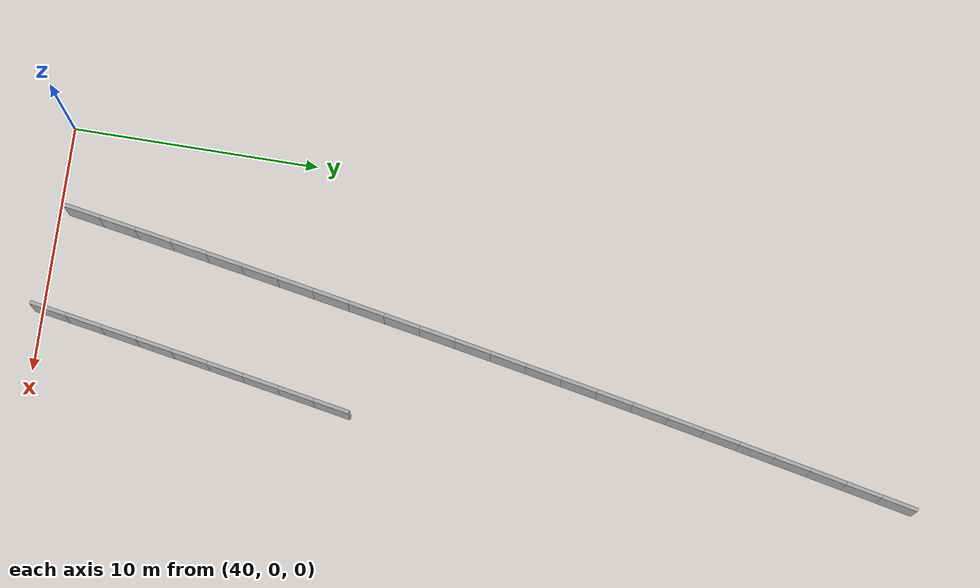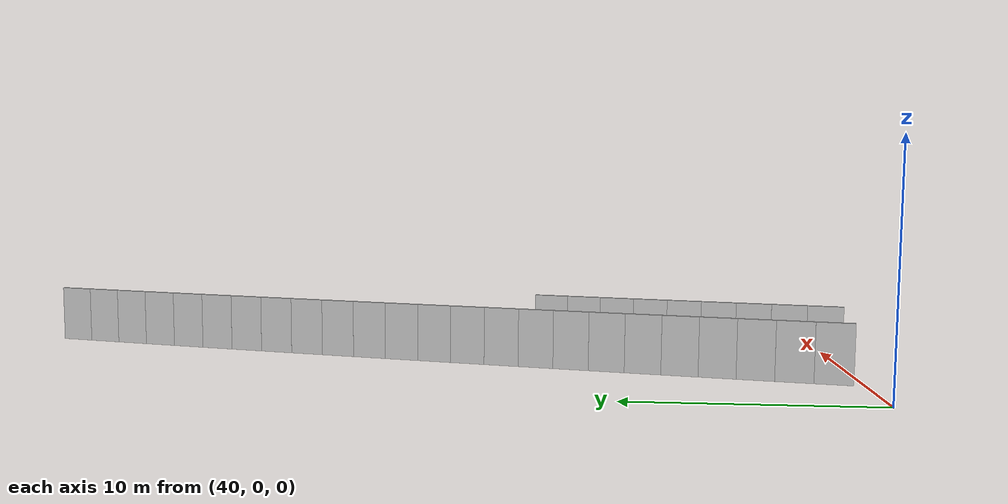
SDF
<?xml version="1.0" ?>
<sdf version="1.6">
  <model name="sps_0229">
    <pose frame="">0 0 0 0 -0 0</pose>
    <static>1</static>
    <self_collide>0</self_collide>
    <allow_auto_disable>0</allow_auto_disable>
    <link name="Wall5094">
      <kinematic>0</kinematic>
      <gravity>1</gravity>
      <self_collide>0</self_collide>
      <collision name="collision">
        <geometry>
          <box>
            <size>1.49668 0.15 2.5</size>
          </box>
        </geometry>
        <pose frame="">0 0 0 0 -0 0</pose>
      </collision>
      <visual name="visual">
        <geometry>
          <box>
            <size>1.49668 0.15 2.5</size>
          </box>
        </geometry>
        <pose frame="">0 0 0 0 -0 0</pose>
        <cast_shadows>1</cast_shadows>
        <transparency>0.0</transparency>
      </visual>
      <pose frame="">49.7481 12.2487 1.25 0 0 -1.75112</pose>
    </link>
    <link name="Wall5095">
      <kinematic>0</kinematic>
      <gravity>1</gravity>
      <self_collide>0</self_collide>
      <collision name="collision">
        <geometry>
          <box>
            <size>1.4965 0.15 2.5</size>
          </box>
        </geometry>
        <pose frame="">0 0 0 0 -0 0</pose>
      </collision>
      <visual name="visual">
        <geometry>
          <box>
            <size>1.4965 0.15 2.5</size>
          </box>
        </geometry>
        <pose frame="">0 0 0 0 -0 0</pose>
        <cast_shadows>1</cast_shadows>
        <transparency>0.0</transparency>
      </visual>
      <pose frame="">49.4806 10.7762 1.25 0 0 -1.74978</pose>
    </link>
    <link name="Wall5096">
      <kinematic>0</kinematic>
      <gravity>1</gravity>
      <self_collide>0</self_collide>
      <collision name="collision">
        <geometry>
          <box>
            <size>1.4964 0.15 2.5</size>
          </box>
        </geometry>
        <pose frame="">0 0 0 0 -0 0</pose>
      </collision>
      <visual name="visual">
        <geometry>
          <box>
            <size>1.4964 0.15 2.5</size>
          </box>
        </geometry>
        <pose frame="">0 0 0 0 -0 0</pose>
        <cast_shadows>1</cast_shadows>
        <transparency>0.0</transparency>
      </visual>
      <pose frame="">49.2155 9.30339 1.25 0 0 -1.74801</pose>
    </link>
    <link name="Wall5097">
      <kinematic>0</kinematic>
      <gravity>1</gravity>
      <self_collide>0</self_collide>
      <collision name="collision">
        <geometry>
          <box>
            <size>1.49667 0.15 2.5</size>
          </box>
        </geometry>
        <pose frame="">0 0 0 0 -0 0</pose>
      </collision>
      <visual name="visual">
        <geometry>
          <box>
            <size>1.49667 0.15 2.5</size>
          </box>
        </geometry>
        <pose frame="">0 0 0 0 -0 0</pose>
        <cast_shadows>1</cast_shadows>
        <transparency>0.0</transparency>
      </visual>
      <pose frame="">48.9528 7.83009 1.25 0 0 -1.74648</pose>
    </link>
    <link name="Wall5098">
      <kinematic>0</kinematic>
      <gravity>1</gravity>
      <self_collide>0</self_collide>
      <collision name="collision">
        <geometry>
          <box>
            <size>1.49641 0.15 2.5</size>
          </box>
        </geometry>
        <pose frame="">0 0 0 0 -0 0</pose>
      </collision>
      <visual name="visual">
        <geometry>
          <box>
            <size>1.49641 0.15 2.5</size>
          </box>
        </geometry>
        <pose frame="">0 0 0 0 -0 0</pose>
        <cast_shadows>1</cast_shadows>
        <transparency>0.0</transparency>
      </visual>
      <pose frame="">48.6923 6.3564 1.25 0 0 -1.74502</pose>
    </link>
    <link name="Wall5099">
      <kinematic>0</kinematic>
      <gravity>1</gravity>
      <self_collide>0</self_collide>
      <collision name="collision">
        <geometry>
          <box>
            <size>1.49662 0.15 2.5</size>
          </box>
        </geometry>
        <pose frame="">0 0 0 0 -0 0</pose>
      </collision>
      <visual name="visual">
        <geometry>
          <box>
            <size>1.49662 0.15 2.5</size>
          </box>
        </geometry>
        <pose frame="">0 0 0 0 -0 0</pose>
        <cast_shadows>1</cast_shadows>
        <transparency>0.0</transparency>
      </visual>
      <pose frame="">48.4343 4.88231 1.25 0 0 -1.74322</pose>
    </link>
    <link name="Wall5100">
      <kinematic>0</kinematic>
      <gravity>1</gravity>
      <self_collide>0</self_collide>
      <collision name="collision">
        <geometry>
          <box>
            <size>1.49643 0.15 2.5</size>
          </box>
        </geometry>
        <pose frame="">0 0 0 0 -0 0</pose>
      </collision>
      <visual name="visual">
        <geometry>
          <box>
            <size>1.49643 0.15 2.5</size>
          </box>
        </geometry>
        <pose frame="">0 0 0 0 -0 0</pose>
        <cast_shadows>1</cast_shadows>
        <transparency>0.0</transparency>
      </visual>
      <pose frame="">48.1786 3.40779 1.25 0 0 -1.74179</pose>
    </link>
    <link name="Wall5101">
      <kinematic>0</kinematic>
      <gravity>1</gravity>
      <self_collide>0</self_collide>
      <collision name="collision">
        <geometry>
          <box>
            <size>1.49662 0.15 2.5</size>
          </box>
        </geometry>
        <pose frame="">0 0 0 0 -0 0</pose>
      </collision>
      <visual name="visual">
        <geometry>
          <box>
            <size>1.49662 0.15 2.5</size>
          </box>
        </geometry>
        <pose frame="">0 0 0 0 -0 0</pose>
        <cast_shadows>1</cast_shadows>
        <transparency>0.0</transparency>
      </visual>
      <pose frame="">47.9251 1.93288 1.25 0 0 -1.74012</pose>
    </link>
    <link name="Wall5102">
      <kinematic>0</kinematic>
      <gravity>1</gravity>
      <self_collide>0</self_collide>
      <collision name="collision">
        <geometry>
          <box>
            <size>1.49643 0.15 2.5</size>
          </box>
        </geometry>
        <pose frame="">0 0 0 0 -0 0</pose>
      </collision>
      <visual name="visual">
        <geometry>
          <box>
            <size>1.49643 0.15 2.5</size>
          </box>
        </geometry>
        <pose frame="">0 0 0 0 -0 0</pose>
        <cast_shadows>1</cast_shadows>
        <transparency>0.0</transparency>
      </visual>
      <pose frame="">47.674 0.457564 1.25 0 0 -1.73865</pose>
    </link>
    <link name="Wall6875">
      <kinematic>0</kinematic>
      <gravity>1</gravity>
      <self_collide>0</self_collide>
      <collision name="collision">
        <geometry>
          <box>
            <size>1.50303 0.15 2.5</size>
          </box>
        </geometry>
        <pose frame="">0 0 0 0 -0 0</pose>
      </collision>
      <visual name="visual">
        <geometry>
          <box>
            <size>1.50303 0.15 2.5</size>
          </box>
        </geometry>
        <pose frame="">0 0 0 0 -0 0</pose>
        <cast_shadows>1</cast_shadows>
        <transparency>0.0</transparency>
      </visual>
      <pose frame="">49.9854 35.1216 1.25 0 0 -1.77501</pose>
    </link>
    <link name="Wall6876">
      <kinematic>0</kinematic>
      <gravity>1</gravity>
      <self_collide>0</self_collide>
      <collision name="collision">
        <geometry>
          <box>
            <size>1.50314 0.15 2.5</size>
          </box>
        </geometry>
        <pose frame="">0 0 0 0 -0 0</pose>
      </collision>
      <visual name="visual">
        <geometry>
          <box>
            <size>1.50314 0.15 2.5</size>
          </box>
        </geometry>
        <pose frame="">0 0 0 0 -0 0</pose>
        <cast_shadows>1</cast_shadows>
        <transparency>0.0</transparency>
      </visual>
      <pose frame="">49.6818 33.6495 1.25 0 0 -1.77334</pose>
    </link>
    <link name="Wall6877">
      <kinematic>0</kinematic>
      <gravity>1</gravity>
      <self_collide>0</self_collide>
      <collision name="collision">
        <geometry>
          <box>
            <size>1.50307 0.15 2.5</size>
          </box>
        </geometry>
        <pose frame="">0 0 0 0 -0 0</pose>
      </collision>
      <visual name="visual">
        <geometry>
          <box>
            <size>1.50307 0.15 2.5</size>
          </box>
        </geometry>
        <pose frame="">0 0 0 0 -0 0</pose>
        <cast_shadows>1</cast_shadows>
        <transparency>0.0</transparency>
      </visual>
      <pose frame="">49.3805 32.1769 1.25 0 0 -1.7719</pose>
    </link>
    <link name="Wall6878">
      <kinematic>0</kinematic>
      <gravity>1</gravity>
      <self_collide>0</self_collide>
      <collision name="collision">
        <geometry>
          <box>
            <size>1.50318 0.15 2.5</size>
          </box>
        </geometry>
        <pose frame="">0 0 0 0 -0 0</pose>
      </collision>
      <visual name="visual">
        <geometry>
          <box>
            <size>1.50318 0.15 2.5</size>
          </box>
        </geometry>
        <pose frame="">0 0 0 0 -0 0</pose>
        <cast_shadows>1</cast_shadows>
        <transparency>0.0</transparency>
      </visual>
      <pose frame="">49.0815 30.7038 1.25 0 0 -1.77022</pose>
    </link>
    <link name="Wall6879">
      <kinematic>0</kinematic>
      <gravity>1</gravity>
      <self_collide>0</self_collide>
      <collision name="collision">
        <geometry>
          <box>
            <size>1.50295 0.15 2.5</size>
          </box>
        </geometry>
        <pose frame="">0 0 0 0 -0 0</pose>
      </collision>
      <visual name="visual">
        <geometry>
          <box>
            <size>1.50295 0.15 2.5</size>
          </box>
        </geometry>
        <pose frame="">0 0 0 0 -0 0</pose>
        <cast_shadows>1</cast_shadows>
        <transparency>0.0</transparency>
      </visual>
      <pose frame="">48.7849 29.2303 1.25 0 0 -1.76864</pose>
    </link>
    <link name="Wall6880">
      <kinematic>0</kinematic>
      <gravity>1</gravity>
      <self_collide>0</self_collide>
      <collision name="collision">
        <geometry>
          <box>
            <size>1.50305 0.15 2.5</size>
          </box>
        </geometry>
        <pose frame="">0 0 0 0 -0 0</pose>
      </collision>
      <visual name="visual">
        <geometry>
          <box>
            <size>1.50305 0.15 2.5</size>
          </box>
        </geometry>
        <pose frame="">0 0 0 0 -0 0</pose>
        <cast_shadows>1</cast_shadows>
        <transparency>0.0</transparency>
      </visual>
      <pose frame="">48.4907 27.7564 1.25 0 0 -1.76709</pose>
    </link>
    <link name="Wall6881">
      <kinematic>0</kinematic>
      <gravity>1</gravity>
      <self_collide>0</self_collide>
      <collision name="collision">
        <geometry>
          <box>
            <size>1.50302 0.15 2.5</size>
          </box>
        </geometry>
        <pose frame="">0 0 0 0 -0 0</pose>
      </collision>
      <visual name="visual">
        <geometry>
          <box>
            <size>1.50302 0.15 2.5</size>
          </box>
        </geometry>
        <pose frame="">0 0 0 0 -0 0</pose>
        <cast_shadows>1</cast_shadows>
        <transparency>0.0</transparency>
      </visual>
      <pose frame="">48.1987 26.282 1.25 0 0 -1.76552</pose>
    </link>
    <link name="Wall6882">
      <kinematic>0</kinematic>
      <gravity>1</gravity>
      <self_collide>0</self_collide>
      <collision name="collision">
        <geometry>
          <box>
            <size>1.50318 0.15 2.5</size>
          </box>
        </geometry>
        <pose frame="">0 0 0 0 -0 0</pose>
      </collision>
      <visual name="visual">
        <geometry>
          <box>
            <size>1.50318 0.15 2.5</size>
          </box>
        </geometry>
        <pose frame="">0 0 0 0 -0 0</pose>
        <cast_shadows>1</cast_shadows>
        <transparency>0.0</transparency>
      </visual>
      <pose frame="">47.909 24.8071 1.25 0 0 -1.76397</pose>
    </link>
    <link name="Wall6883">
      <kinematic>0</kinematic>
      <gravity>1</gravity>
      <self_collide>0</self_collide>
      <collision name="collision">
        <geometry>
          <box>
            <size>1.50308 0.15 2.5</size>
          </box>
        </geometry>
        <pose frame="">0 0 0 0 -0 0</pose>
      </collision>
      <visual name="visual">
        <geometry>
          <box>
            <size>1.50308 0.15 2.5</size>
          </box>
        </geometry>
        <pose frame="">0 0 0 0 -0 0</pose>
        <cast_shadows>1</cast_shadows>
        <transparency>0.0</transparency>
      </visual>
      <pose frame="">47.6216 23.3317 1.25 0 0 -1.76237</pose>
    </link>
    <link name="Wall6884">
      <kinematic>0</kinematic>
      <gravity>1</gravity>
      <self_collide>0</self_collide>
      <collision name="collision">
        <geometry>
          <box>
            <size>1.50305 0.15 2.5</size>
          </box>
        </geometry>
        <pose frame="">0 0 0 0 -0 0</pose>
      </collision>
      <visual name="visual">
        <geometry>
          <box>
            <size>1.50305 0.15 2.5</size>
          </box>
        </geometry>
        <pose frame="">0 0 0 0 -0 0</pose>
        <cast_shadows>1</cast_shadows>
        <transparency>0.0</transparency>
      </visual>
      <pose frame="">47.3366 21.8559 1.25 0 0 -1.76076</pose>
    </link>
    <link name="Wall6885">
      <kinematic>0</kinematic>
      <gravity>1</gravity>
      <self_collide>0</self_collide>
      <collision name="collision">
        <geometry>
          <box>
            <size>1.50314 0.15 2.5</size>
          </box>
        </geometry>
        <pose frame="">0 0 0 0 -0 0</pose>
      </collision>
      <visual name="visual">
        <geometry>
          <box>
            <size>1.50314 0.15 2.5</size>
          </box>
        </geometry>
        <pose frame="">0 0 0 0 -0 0</pose>
        <cast_shadows>1</cast_shadows>
        <transparency>0.0</transparency>
      </visual>
      <pose frame="">47.0539 20.3796 1.25 0 0 -1.75914</pose>
    </link>
    <link name="Wall6886">
      <kinematic>0</kinematic>
      <gravity>1</gravity>
      <self_collide>0</self_collide>
      <collision name="collision">
        <geometry>
          <box>
            <size>1.50296 0.15 2.5</size>
          </box>
        </geometry>
        <pose frame="">0 0 0 0 -0 0</pose>
      </collision>
      <visual name="visual">
        <geometry>
          <box>
            <size>1.50296 0.15 2.5</size>
          </box>
        </geometry>
        <pose frame="">0 0 0 0 -0 0</pose>
        <cast_shadows>1</cast_shadows>
        <transparency>0.0</transparency>
      </visual>
      <pose frame="">46.7736 18.9029 1.25 0 0 -1.75763</pose>
    </link>
    <link name="Wall6887">
      <kinematic>0</kinematic>
      <gravity>1</gravity>
      <self_collide>0</self_collide>
      <collision name="collision">
        <geometry>
          <box>
            <size>1.50312 0.15 2.5</size>
          </box>
        </geometry>
        <pose frame="">0 0 0 0 -0 0</pose>
      </collision>
      <visual name="visual">
        <geometry>
          <box>
            <size>1.50312 0.15 2.5</size>
          </box>
        </geometry>
        <pose frame="">0 0 0 0 -0 0</pose>
        <cast_shadows>1</cast_shadows>
        <transparency>0.0</transparency>
      </visual>
      <pose frame="">46.4957 17.4258 1.25 0 0 -1.756</pose>
    </link>
    <link name="Wall6888">
      <kinematic>0</kinematic>
      <gravity>1</gravity>
      <self_collide>0</self_collide>
      <collision name="collision">
        <geometry>
          <box>
            <size>1.50305 0.15 2.5</size>
          </box>
        </geometry>
        <pose frame="">0 0 0 0 -0 0</pose>
      </collision>
      <visual name="visual">
        <geometry>
          <box>
            <size>1.50305 0.15 2.5</size>
          </box>
        </geometry>
        <pose frame="">0 0 0 0 -0 0</pose>
        <cast_shadows>1</cast_shadows>
        <transparency>0.0</transparency>
      </visual>
      <pose frame="">46.2201 15.9482 1.25 0 0 -1.7544</pose>
    </link>
    <link name="Wall6889">
      <kinematic>0</kinematic>
      <gravity>1</gravity>
      <self_collide>0</self_collide>
      <collision name="collision">
        <geometry>
          <box>
            <size>1.50307 0.15 2.5</size>
          </box>
        </geometry>
        <pose frame="">0 0 0 0 -0 0</pose>
      </collision>
      <visual name="visual">
        <geometry>
          <box>
            <size>1.50307 0.15 2.5</size>
          </box>
        </geometry>
        <pose frame="">0 0 0 0 -0 0</pose>
        <cast_shadows>1</cast_shadows>
        <transparency>0.0</transparency>
      </visual>
      <pose frame="">45.9467 14.4702 1.25 0 0 -1.75291</pose>
    </link>
    <link name="Wall6890">
      <kinematic>0</kinematic>
      <gravity>1</gravity>
      <self_collide>0</self_collide>
      <collision name="collision">
        <geometry>
          <box>
            <size>1.50319 0.15 2.5</size>
          </box>
        </geometry>
        <pose frame="">0 0 0 0 -0 0</pose>
      </collision>
      <visual name="visual">
        <geometry>
          <box>
            <size>1.50319 0.15 2.5</size>
          </box>
        </geometry>
        <pose frame="">0 0 0 0 -0 0</pose>
        <cast_shadows>1</cast_shadows>
        <transparency>0.0</transparency>
      </visual>
      <pose frame="">45.6758 12.9917 1.25 0 0 -1.75112</pose>
    </link>
    <link name="Wall6891">
      <kinematic>0</kinematic>
      <gravity>1</gravity>
      <self_collide>0</self_collide>
      <collision name="collision">
        <geometry>
          <box>
            <size>1.50301 0.15 2.5</size>
          </box>
        </geometry>
        <pose frame="">0 0 0 0 -0 0</pose>
      </collision>
      <visual name="visual">
        <geometry>
          <box>
            <size>1.50301 0.15 2.5</size>
          </box>
        </geometry>
        <pose frame="">0 0 0 0 -0 0</pose>
        <cast_shadows>1</cast_shadows>
        <transparency>0.0</transparency>
      </visual>
      <pose frame="">45.4072 11.5128 1.25 0 0 -1.74978</pose>
    </link>
    <link name="Wall6892">
      <kinematic>0</kinematic>
      <gravity>1</gravity>
      <self_collide>0</self_collide>
      <collision name="collision">
        <geometry>
          <box>
            <size>1.5031 0.15 2.5</size>
          </box>
        </geometry>
        <pose frame="">0 0 0 0 -0 0</pose>
      </collision>
      <visual name="visual">
        <geometry>
          <box>
            <size>1.5031 0.15 2.5</size>
          </box>
        </geometry>
        <pose frame="">0 0 0 0 -0 0</pose>
        <cast_shadows>1</cast_shadows>
        <transparency>0.0</transparency>
      </visual>
      <pose frame="">45.141 10.0335 1.25 0 0 -1.74803</pose>
    </link>
    <link name="Wall6893">
      <kinematic>0</kinematic>
      <gravity>1</gravity>
      <self_collide>0</self_collide>
      <collision name="collision">
        <geometry>
          <box>
            <size>1.5032 0.15 2.5</size>
          </box>
        </geometry>
        <pose frame="">0 0 0 0 -0 0</pose>
      </collision>
      <visual name="visual">
        <geometry>
          <box>
            <size>1.5032 0.15 2.5</size>
          </box>
        </geometry>
        <pose frame="">0 0 0 0 -0 0</pose>
        <cast_shadows>1</cast_shadows>
        <transparency>0.0</transparency>
      </visual>
      <pose frame="">44.877 8.55369 1.25 0 0 -1.74654</pose>
    </link>
    <link name="Wall6894">
      <kinematic>0</kinematic>
      <gravity>1</gravity>
      <self_collide>0</self_collide>
      <collision name="collision">
        <geometry>
          <box>
            <size>1.5031 0.15 2.5</size>
          </box>
        </geometry>
        <pose frame="">0 0 0 0 -0 0</pose>
      </collision>
      <visual name="visual">
        <geometry>
          <box>
            <size>1.5031 0.15 2.5</size>
          </box>
        </geometry>
        <pose frame="">0 0 0 0 -0 0</pose>
        <cast_shadows>1</cast_shadows>
        <transparency>0.0</transparency>
      </visual>
      <pose frame="">44.6155 7.07347 1.25 0 0 -1.74478</pose>
    </link>
    <link name="Wall6895">
      <kinematic>0</kinematic>
      <gravity>1</gravity>
      <self_collide>0</self_collide>
      <collision name="collision">
        <geometry>
          <box>
            <size>1.50308 0.15 2.5</size>
          </box>
        </geometry>
        <pose frame="">0 0 0 0 -0 0</pose>
      </collision>
      <visual name="visual">
        <geometry>
          <box>
            <size>1.50308 0.15 2.5</size>
          </box>
        </geometry>
        <pose frame="">0 0 0 0 -0 0</pose>
        <cast_shadows>1</cast_shadows>
        <transparency>0.0</transparency>
      </visual>
      <pose frame="">44.3564 5.59288 1.25 0 0 -1.7433</pose>
    </link>
    <link name="Wall6896">
      <kinematic>0</kinematic>
      <gravity>1</gravity>
      <self_collide>0</self_collide>
      <collision name="collision">
        <geometry>
          <box>
            <size>1.50313 0.15 2.5</size>
          </box>
        </geometry>
        <pose frame="">0 0 0 0 -0 0</pose>
      </collision>
      <visual name="visual">
        <geometry>
          <box>
            <size>1.50313 0.15 2.5</size>
          </box>
        </geometry>
        <pose frame="">0 0 0 0 -0 0</pose>
        <cast_shadows>1</cast_shadows>
        <transparency>0.0</transparency>
      </visual>
      <pose frame="">44.0995 4.11189 1.25 0 0 -1.74181</pose>
    </link>
    <link name="Wall6897">
      <kinematic>0</kinematic>
      <gravity>1</gravity>
      <self_collide>0</self_collide>
      <collision name="collision">
        <geometry>
          <box>
            <size>1.50313 0.15 2.5</size>
          </box>
        </geometry>
        <pose frame="">0 0 0 0 -0 0</pose>
      </collision>
      <visual name="visual">
        <geometry>
          <box>
            <size>1.50313 0.15 2.5</size>
          </box>
        </geometry>
        <pose frame="">0 0 0 0 -0 0</pose>
        <cast_shadows>1</cast_shadows>
        <transparency>0.0</transparency>
      </visual>
      <pose frame="">43.845 2.63048 1.25 0 0 -1.74016</pose>
    </link>
    <link name="Wall6898">
      <kinematic>0</kinematic>
      <gravity>1</gravity>
      <self_collide>0</self_collide>
      <collision name="collision">
        <geometry>
          <box>
            <size>1.50287 0.15 2.5</size>
          </box>
        </geometry>
        <pose frame="">0 0 0 0 -0 0</pose>
      </collision>
      <visual name="visual">
        <geometry>
          <box>
            <size>1.50287 0.15 2.5</size>
          </box>
        </geometry>
        <pose frame="">0 0 0 0 -0 0</pose>
        <cast_shadows>1</cast_shadows>
        <transparency>0.0</transparency>
      </visual>
      <pose frame="">43.5928 1.14879 1.25 0 0 -1.73862</pose>
    </link>
  </model>
</sdf>
